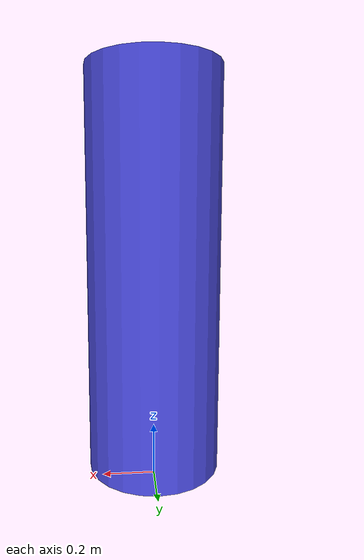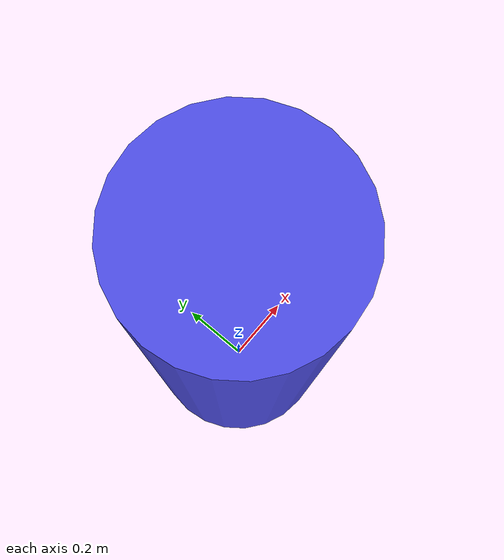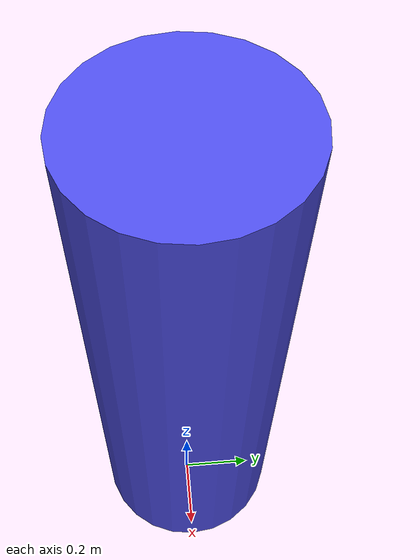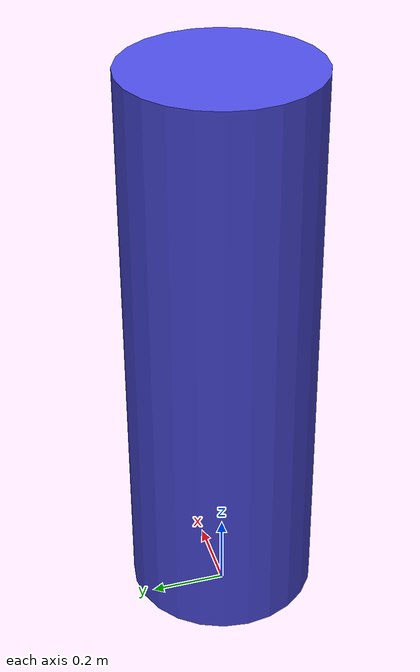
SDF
<?xml version="1.0" ?>
<sdf version="1.5">

<model name="actor_model">
  <pose>0 0 0.8 0 0 0</pose>
    <link name="body">
      <collision name="collision_body">
        <geometry>
          <cylinder>
            <radius>0.25</radius>
            <length>1.6</length>
          </cylinder>
        </geometry>
      </collision>
      <inertial>
        <mass>0.00001</mass>
        <inertia> <!-- http://gazebosim.org/tutorials?tut=inertia&cat=build_robot -->
          <ixx>0.0</ixx>       <!-- for a box: ixx = 0.083 * mass * (y*y + z*z) -->
          <ixy>0.0</ixy>       <!-- for a box: ixy = 0 -->
          <ixz>0.0</ixz>       <!-- for a box: ixz = 0 -->
          <iyy>0.0</iyy>       <!-- for a box: iyy = 0.083 * mass * (x*x + z*z) -->
          <iyz>0.0</iyz>       <!-- for a box: iyz = 0 -->
          <izz>0.0</izz>       <!-- for a box: izz = 0.083 * mass * (x*x + y*y) -->
        </inertia>
      </inertial>
      <visual name="visual_body">
        <geometry>
          <cylinder>
            <radius>0.25</radius>
            <length>1.5</length>
          </cylinder>
        </geometry>
        <material>
          <lighting>1</lighting>
          <script>
            <uri>file://media/materials/scripts/gazebo.material</uri>
            <name>Gazebo/Grey</name>
          </script>
          <shader type='vertex'>
            <normal_map>__default__</normal_map>
          </shader>
          <ambient>0.3 0.3 0.9 1</ambient>
          <diffuse>0.5 0.5 0.5 1</diffuse>
          <specular>0.0 0.0 0.0 1</specular>
          <emissive>0.0 0.0 0.0 1</emissive>
        </material>
      </visual>
      <gravity>0</gravity>
    </link>
  </model>
</sdf>
